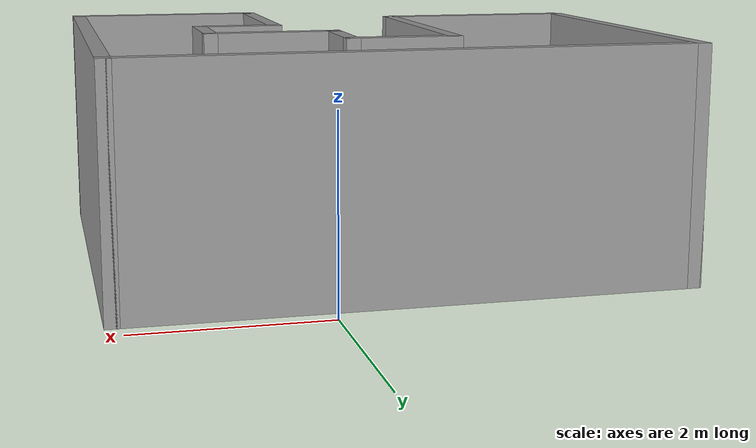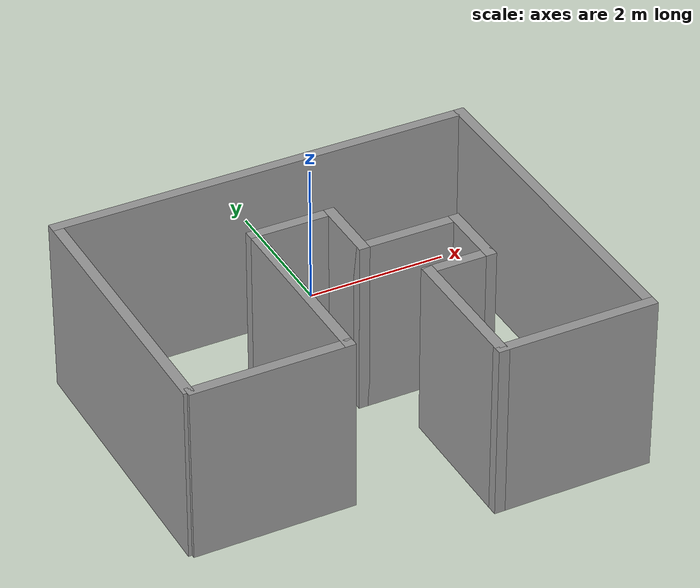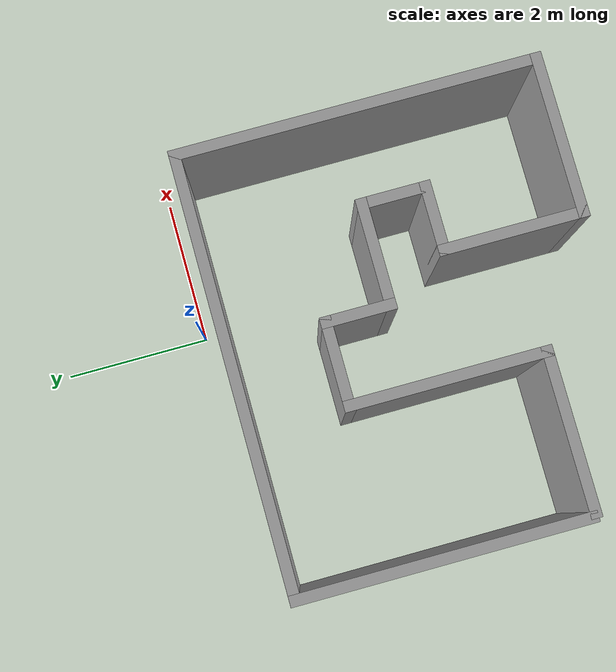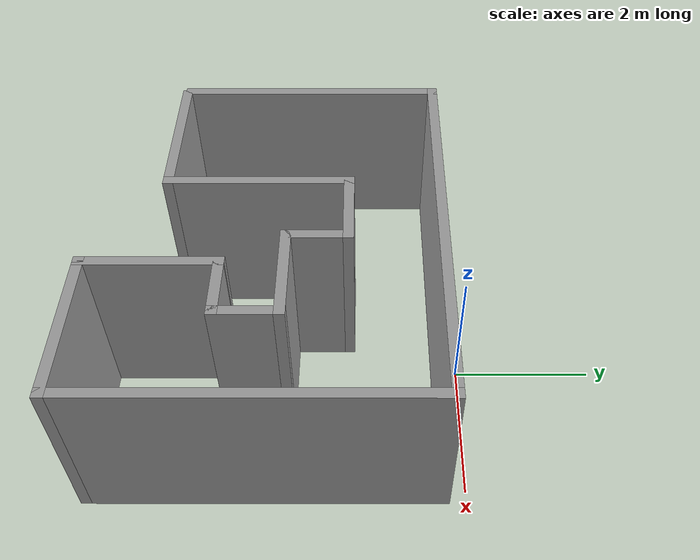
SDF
<?xml version='1.0'?>
<sdf version='1.7'>
  <model name='Untitled'>
    <pose>-0.835 -2.6125 0 0 -0 0</pose>
    <link name='Wall_0'>
      <collision name='Wall_0_Collision'>
        <geometry>
          <box>
            <size>4 0.15 2.5</size>
          </box>
        </geometry>
        <pose>0 0 1.25 0 -0 0</pose>
      </collision>
      <visual name='Wall_0_Visual'>
        <pose>0 0 1.25 0 -0 0</pose>
        <geometry>
          <box>
            <size>4 0.15 2.5</size>
          </box>
        </geometry>
        <material>
          <script>
            <uri>file://media/materials/scripts/gazebo.material</uri>
            <name>Gazebo/Grey</name>
          </script>
          <ambient>1 1 1 1</ambient>
        </material>
        <meta>
          <layer>0</layer>
        </meta>
      </visual>
      <pose>-2.925 0.3875 0 0 -0 1.5708</pose>
    </link>
    <link name='Wall_1'>
      <collision name='Wall_1_Collision'>
        <geometry>
          <box>
            <size>6 0.15 2.5</size>
          </box>
        </geometry>
        <pose>0 0 1.25 0 -0 0</pose>
      </collision>
      <visual name='Wall_1_Visual'>
        <pose>0 0 1.25 0 -0 0</pose>
        <geometry>
          <box>
            <size>6 0.15 2.5</size>
          </box>
        </geometry>
        <material>
          <script>
            <uri>file://media/materials/scripts/gazebo.material</uri>
            <name>Gazebo/Grey</name>
          </script>
          <ambient>1 1 1 1</ambient>
        </material>
        <meta>
          <layer>0</layer>
        </meta>
      </visual>
      <pose>0 2.3125 0 0 -0 0</pose>
    </link>
    <link name='Wall_10'>
      <collision name='Wall_10_Collision'>
        <geometry>
          <box>
            <size>2.75 0.15 2.5</size>
          </box>
        </geometry>
        <pose>0 0 1.25 0 -0 0</pose>
      </collision>
      <visual name='Wall_10_Visual'>
        <pose>0 0 1.25 0 -0 0</pose>
        <geometry>
          <box>
            <size>2.75 0.15 2.5</size>
          </box>
        </geometry>
        <material>
          <script>
            <uri>file://media/materials/scripts/gazebo.material</uri>
            <name>Gazebo/Grey</name>
          </script>
          <ambient>1 1 1 1</ambient>
        </material>
        <meta>
          <layer>0</layer>
        </meta>
      </visual>
      <pose>-0.775 -0.2875 0 0 -0 -1.5708</pose>
    </link>
    <link name='Wall_11'>
      <collision name='Wall_11_Collision'>
        <geometry>
          <box>
            <size>2.25 0.15 2.5</size>
          </box>
        </geometry>
        <pose>0 0 1.25 0 -0 0</pose>
      </collision>
      <visual name='Wall_11_Visual'>
        <pose>0 0 1.25 0 -0 0</pose>
        <geometry>
          <box>
            <size>2.25 0.15 2.5</size>
          </box>
        </geometry>
        <material>
          <script>
            <uri>file://media/materials/scripts/gazebo.material</uri>
            <name>Gazebo/Grey</name>
          </script>
          <ambient>1 1 1 1</ambient>
        </material>
        <meta>
          <layer>0</layer>
        </meta>
      </visual>
      <pose>-1.825 -1.5875 0 0 -0 3.14159</pose>
    </link>
    <link name='Wall_2'>
      <collision name='Wall_2_Collision'>
        <geometry>
          <box>
            <size>5 0.15 2.5</size>
          </box>
        </geometry>
        <pose>0 0 1.25 0 -0 0</pose>
      </collision>
      <visual name='Wall_2_Visual'>
        <pose>0 0 1.25 0 -0 0</pose>
        <geometry>
          <box>
            <size>5 0.15 2.5</size>
          </box>
        </geometry>
        <material>
          <script>
            <uri>file://media/materials/scripts/gazebo.material</uri>
            <name>Gazebo/Grey</name>
          </script>
          <ambient>1 1 1 1</ambient>
        </material>
        <meta>
          <layer>0</layer>
        </meta>
      </visual>
      <pose>2.925 -0.1125 0 0 -0 -1.5708</pose>
    </link>
    <link name='Wall_3'>
      <collision name='Wall_3_Collision'>
        <geometry>
          <box>
            <size>2.25 0.15 2.5</size>
          </box>
        </geometry>
        <pose>0 0 1.25 0 -0 0</pose>
      </collision>
      <visual name='Wall_3_Visual'>
        <pose>0 0 1.25 0 -0 0</pose>
        <geometry>
          <box>
            <size>2.25 0.15 2.5</size>
          </box>
        </geometry>
        <material>
          <script>
            <uri>file://media/materials/scripts/gazebo.material</uri>
            <name>Gazebo/Grey</name>
          </script>
          <ambient>1 1 1 1</ambient>
        </material>
        <meta>
          <layer>0</layer>
        </meta>
      </visual>
      <pose>1.875 -2.5375 0 0 -0 3.14159</pose>
    </link>
    <link name='Wall_4'>
      <collision name='Wall_4_Collision'>
        <geometry>
          <box>
            <size>2 0.15 2.5</size>
          </box>
        </geometry>
        <pose>0 0 1.25 0 -0 0</pose>
      </collision>
      <visual name='Wall_4_Visual'>
        <pose>0 0 1.25 0 -0 0</pose>
        <geometry>
          <box>
            <size>2 0.15 2.5</size>
          </box>
        </geometry>
        <material>
          <script>
            <uri>file://media/materials/scripts/gazebo.material</uri>
            <name>Gazebo/Grey</name>
          </script>
          <ambient>1 1 1 1</ambient>
        </material>
        <meta>
          <layer>0</layer>
        </meta>
      </visual>
      <pose>0.825 -1.6125 0 0 -0 1.5708</pose>
    </link>
    <link name='Wall_5'>
      <collision name='Wall_5_Collision'>
        <geometry>
          <box>
            <size>1 0.15 2.5</size>
          </box>
        </geometry>
        <pose>0 0 1.25 0 -0 0</pose>
      </collision>
      <visual name='Wall_5_Visual'>
        <pose>0 0 1.25 0 -0 0</pose>
        <geometry>
          <box>
            <size>1 0.15 2.5</size>
          </box>
        </geometry>
        <material>
          <script>
            <uri>file://media/materials/scripts/gazebo.material</uri>
            <name>Gazebo/Grey</name>
          </script>
          <ambient>1 1 1 1</ambient>
        </material>
        <meta>
          <layer>0</layer>
        </meta>
      </visual>
      <pose>1.25 -0.6875 0 0 -0 0</pose>
    </link>
    <link name='Wall_6'>
      <collision name='Wall_6_Collision'>
        <geometry>
          <box>
            <size>1 0.15 2.5</size>
          </box>
        </geometry>
        <pose>0 0 1.25 0 -0 0</pose>
      </collision>
      <visual name='Wall_6_Visual'>
        <pose>0 0 1.25 0 -0 0</pose>
        <geometry>
          <box>
            <size>1 0.15 2.5</size>
          </box>
        </geometry>
        <material>
          <script>
            <uri>file://media/materials/scripts/gazebo.material</uri>
            <name>Gazebo/Grey</name>
          </script>
          <ambient>1 1 1 1</ambient>
        </material>
        <meta>
          <layer>0</layer>
        </meta>
      </visual>
      <pose>1.675 -0.2625 0 0 -0 1.5708</pose>
    </link>
    <link name='Wall_7'>
      <collision name='Wall_7_Collision'>
        <geometry>
          <box>
            <size>1.5 0.15 2.5</size>
          </box>
        </geometry>
        <pose>0 0 1.25 0 -0 0</pose>
      </collision>
      <visual name='Wall_7_Visual'>
        <pose>0 0 1.25 0 -0 0</pose>
        <geometry>
          <box>
            <size>1.5 0.15 2.5</size>
          </box>
        </geometry>
        <material>
          <script>
            <uri>file://media/materials/scripts/gazebo.material</uri>
            <name>Gazebo/Grey</name>
          </script>
          <ambient>1 1 1 1</ambient>
        </material>
        <meta>
          <layer>0</layer>
        </meta>
      </visual>
      <pose>1 0.1625 0 0 -0 3.14159</pose>
    </link>
    <link name='Wall_8'>
      <collision name='Wall_8_Collision'>
        <geometry>
          <box>
            <size>1 0.15 2.5</size>
          </box>
        </geometry>
        <pose>0 0 1.25 0 -0 0</pose>
      </collision>
      <visual name='Wall_8_Visual'>
        <pose>0 0 1.25 0 -0 0</pose>
        <geometry>
          <box>
            <size>1 0.15 2.5</size>
          </box>
        </geometry>
        <material>
          <script>
            <uri>file://media/materials/scripts/gazebo.material</uri>
            <name>Gazebo/Grey</name>
          </script>
          <ambient>1 1 1 1</ambient>
        </material>
        <meta>
          <layer>0</layer>
        </meta>
      </visual>
      <pose>0.325 0.5875 0 0 -0 1.5708</pose>
    </link>
    <link name='Wall_9'>
      <collision name='Wall_9_Collision'>
        <geometry>
          <box>
            <size>1.25 0.15 2.5</size>
          </box>
        </geometry>
        <pose>0 0 1.25 0 -0 0</pose>
      </collision>
      <visual name='Wall_9_Visual'>
        <pose>0 0 1.25 0 -0 0</pose>
        <geometry>
          <box>
            <size>1.25 0.15 2.5</size>
          </box>
        </geometry>
        <material>
          <script>
            <uri>file://media/materials/scripts/gazebo.material</uri>
            <name>Gazebo/Grey</name>
          </script>
          <ambient>1 1 1 1</ambient>
        </material>
        <meta>
          <layer>0</layer>
        </meta>
      </visual>
      <pose>-0.225 1.0125 0 0 -0 3.14159</pose>
    </link>
    <static>1</static>
  </model>
</sdf>
